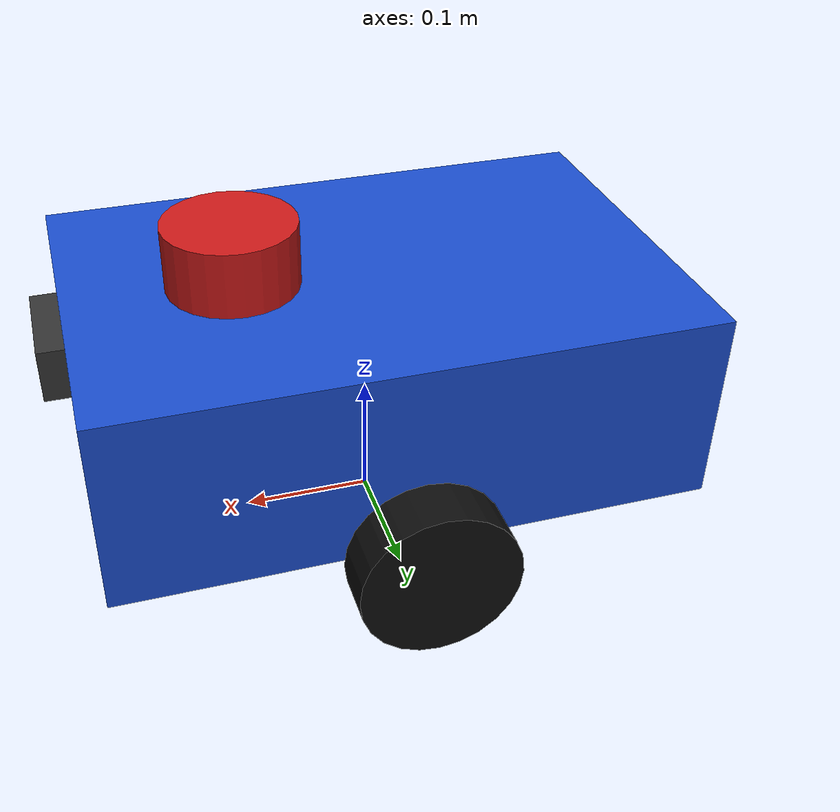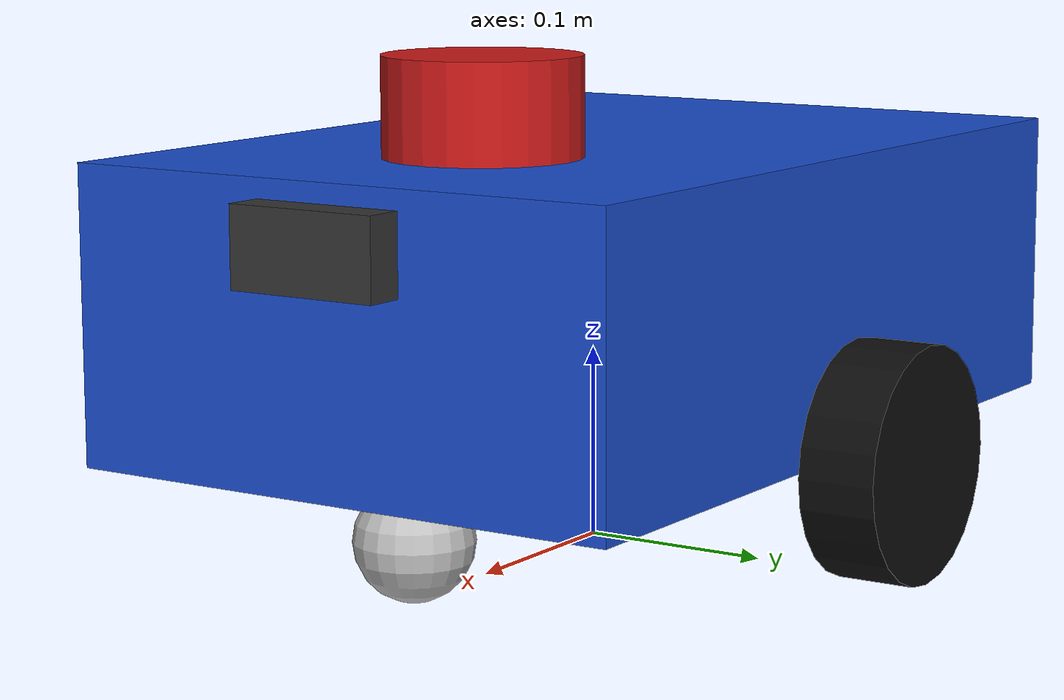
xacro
<?xml version="1.0"?>
<robot xmlns:xacro="http://www.ros.org/wiki/xacro" name="autonomous_robot">

  <xacro:include filename="robot_core.xacro"/>
  <xacro:include filename="lidar.xacro"/>
  <xacro:include filename="camera.xacro"/>
  <xacro:include filename="imu.xacro"/>
  <xacro:include filename="gazebo_plugins.xacro"/>

</robot>

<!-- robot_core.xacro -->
<robot xmlns:xacro="http://www.ros.org/wiki/xacro">

  <!-- Materials -->
  <material name="blue">
    <color rgba="0.1 0.3 0.8 1.0"/>
  </material>
  <material name="dark_grey">
    <color rgba="0.2 0.2 0.2 1.0"/>
  </material>
  <material name="black">
    <color rgba="0.05 0.05 0.05 1.0"/>
  </material>
  <material name="red">
    <color rgba="0.8 0.1 0.1 1.0"/>
  </material>
  <material name="silver">
    <color rgba="0.75 0.75 0.75 1.0"/>
  </material>

  <!-- Base Footprint -->
  <link name="base_footprint"/>

  <joint name="base_footprint_joint" type="fixed">
    <parent link="base_footprint"/>
    <child link="base_link"/>
    <origin xyz="0 0 0.06" rpy="0 0 0"/>
  </joint>

  <!-- Base Link -->
  <link name="base_link">
    <visual>
      <origin xyz="0 0 0.075" rpy="0 0 0"/>
      <geometry>
        <box size="0.45 0.30 0.15"/>
      </geometry>
      <material name="blue"/>
    </visual>
    <collision>
      <origin xyz="0 0 0.075" rpy="0 0 0"/>
      <geometry>
        <box size="0.45 0.30 0.15"/>
      </geometry>
    </collision>
    <inertial>
      <origin xyz="0 0 0.075" rpy="0 0 0"/>
      <mass value="5.0"/>
      <inertia ixx="0.0468" ixy="0.0" ixz="0.0" iyy="0.0937" iyz="0.0" izz="0.1218"/>
    </inertial>
  </link>

  <!-- Left Wheel -->
  <link name="left_wheel_link">
    <visual>
      <geometry>
        <cylinder length="0.04" radius="0.06"/>
      </geometry>
      <material name="black"/>
    </visual>
    <collision>
      <geometry>
        <cylinder length="0.04" radius="0.06"/>
      </geometry>
    </collision>
    <inertial>
      <mass value="0.5"/>
      <inertia ixx="0.000516" ixy="0" ixz="0" iyy="0.000516" iyz="0" izz="0.0009"/>
    </inertial>
  </link>

  <joint name="left_wheel_joint" type="continuous">
    <parent link="base_link"/>
    <child link="left_wheel_link"/>
    <origin xyz="0 0.175 0" rpy="-1.57079 0 0"/>
    <axis xyz="0 0 1"/>
  </joint>

  <!-- Right Wheel -->
  <link name="right_wheel_link">
    <visual>
      <geometry>
        <cylinder length="0.04" radius="0.06"/>
      </geometry>
      <material name="black"/>
    </visual>
    <collision>
      <geometry>
        <cylinder length="0.04" radius="0.06"/>
      </geometry>
    </collision>
    <inertial>
      <mass value="0.5"/>
      <inertia ixx="0.000516" ixy="0" ixz="0" iyy="0.000516" iyz="0" izz="0.0009"/>
    </inertial>
  </link>

  <joint name="right_wheel_joint" type="continuous">
    <parent link="base_link"/>
    <child link="right_wheel_link"/>
    <origin xyz="0 -0.175 0" rpy="-1.57079 0 0"/>
    <axis xyz="0 0 1"/>
  </joint>

  <!-- Front Caster Wheel -->
  <link name="front_caster_link">
    <visual>
      <geometry>
        <sphere radius="0.03"/>
      </geometry>
      <material name="silver"/>
    </visual>
    <collision>
      <geometry>
        <sphere radius="0.03"/>
      </geometry>
    </collision>
    <inertial>
      <mass value="0.2"/>
      <inertia ixx="0.000072" ixy="0" ixz="0" iyy="0.000072" iyz="0" izz="0.000072"/>
    </inertial>
  </link>

  <joint name="front_caster_joint" type="fixed">
    <parent link="base_link"/>
    <child link="front_caster_link"/>
    <origin xyz="0.16 0 -0.03" rpy="0 0 0"/>
  </joint>

  <!-- Rear Caster Wheel -->
  <link name="rear_caster_link">
    <visual>
      <geometry>
        <sphere radius="0.03"/>
      </geometry>
      <material name="silver"/>
    </visual>
    <collision>
      <geometry>
        <sphere radius="0.03"/>
      </geometry>
    </collision>
    <inertial>
      <mass value="0.2"/>
      <inertia ixx="0.000072" ixy="0" ixz="0" iyy="0.000072" iyz="0" izz="0.000072"/>
    </inertial>
  </link>

  <joint name="rear_caster_joint" type="fixed">
    <parent link="base_link"/>
    <child link="rear_caster_link"/>
    <origin xyz="-0.16 0 -0.03" rpy="0 0 0"/>
  </joint>

  <gazebo reference="front_caster_link">
    <mu1>0.001</mu1>
    <mu2>0.001</mu2>
  </gazebo>
  <gazebo reference="rear_caster_link">
    <mu1>0.001</mu1>
    <mu2>0.001</mu2>
  </gazebo>

</robot>

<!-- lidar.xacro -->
<robot xmlns:xacro="http://www.ros.org/wiki/xacro">

  <link name="laser_link">
    <visual>
      <geometry>
        <cylinder length="0.05" radius="0.05"/>
      </geometry>
      <material name="red"/>
    </visual>
    <collision>
      <geometry>
        <cylinder length="0.05" radius="0.05"/>
      </geometry>
    </collision>
    <inertial>
      <mass value="0.15"/>
      <inertia ixx="0.000125" ixy="0" ixz="0" iyy="0.000125" iyz="0" izz="0.0001875"/>
    </inertial>
  </link>

  <joint name="laser_joint" type="fixed">
    <parent link="base_link"/>
    <child link="laser_link"/>
    <origin xyz="0.10 0 0.175" rpy="0 0 0"/>
  </joint>

  <gazebo reference="laser_link">
    <sensor type="gpu_lidar" name="lidar_sensor">
      <pose>0 0 0 0 0 0</pose>
      <always_on>true</always_on>
      <update_rate>20</update_rate>
      <visualize>true</visualize>
      <topic>/scan</topic>
      <gz_frame_id>laser_link</gz_frame_id>
      <lidar>
        <scan>
          <horizontal>
            <samples>720</samples>
            <resolution>1</resolution>
            <min_angle>-3.14159</min_angle>
            <max_angle>3.14159</max_angle>
          </horizontal>
        </scan>
        <range>
          <min>0.12</min>
          <max>12.0</max>
          <resolution>0.01</resolution>
        </range>
        <noise>
          <type>gaussian</type>
          <mean>0.0</mean>
          <stddev>0.01</stddev>
        </noise>
      </lidar>
    </sensor>
  </gazebo>

</robot>

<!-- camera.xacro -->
<robot xmlns:xacro="http://www.ros.org/wiki/xacro">

  <!-- Camera Link (Physical) -->
  <link name="camera_link">
    <visual>
      <origin xyz="0 0 0" rpy="0 0 0"/>
      <geometry>
        <box size="0.05 0.08 0.04"/>
      </geometry>
      <material name="dark_grey"/>
    </visual>
    <collision>
      <origin xyz="0 0 0" rpy="0 0 0"/>
      <geometry>
        <box size="0.05 0.08 0.04"/>
      </geometry>
    </collision>
    <inertial>
      <mass value="0.08"/>
      <inertia ixx="0.00005" ixy="0" ixz="0" iyy="0.00003" iyz="0" izz="0.00005"/>
    </inertial>
  </link>

  <joint name="camera_joint" type="fixed">
    <parent link="base_link"/>
    <child link="camera_link"/>
    <origin xyz="0.22 0 0.12" rpy="0 0 0"/>
  </joint>

  <!-- Camera Optical Link (Standard ROS / OpenCV frame: Z forward, X right, Y down) -->
  <link name="camera_optical_link"/>

  <joint name="camera_optical_joint" type="fixed">
    <parent link="camera_link"/>
    <child link="camera_optical_link"/>
    <origin xyz="0 0 0" rpy="-1.5707963 0 -1.5707963"/>
  </joint>

  <gazebo reference="camera_link">
    <sensor type="camera" name="camera_sensor">
      <pose>0 0 0 0 0 0</pose>
      <always_on>true</always_on>
      <update_rate>30</update_rate>
      <visualize>true</visualize>
      <topic>/camera/image_raw</topic>
      <gz_frame_id>camera_optical_link</gz_frame_id>
      <camera>
        <camera_info_topic>/camera/camera_info</camera_info_topic>
        <horizontal_fov>1.089</horizontal_fov>
        <image>
          <width>640</width>
          <height>480</height>
          <format>R8G8B8</format>
        </image>
        <clip>
          <near>0.08</near>
          <far>25.0</far>
        </clip>
        <noise>
          <type>gaussian</type>
          <mean>0.0</mean>
          <stddev>0.005</stddev>
        </noise>
      </camera>
    </sensor>
  </gazebo>

</robot>

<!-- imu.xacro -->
<robot xmlns:xacro="http://www.ros.org/wiki/xacro">

  <link name="imu_link">
    <visual>
      <geometry>
        <box size="0.02 0.02 0.01"/>
      </geometry>
      <material name="red"/>
    </visual>
    <collision>
      <geometry>
        <box size="0.02 0.02 0.01"/>
      </geometry>
    </collision>
    <inertial>
      <mass value="0.02"/>
      <inertia ixx="0.000001" ixy="0" ixz="0" iyy="0.000001" iyz="0" izz="0.000001"/>
    </inertial>
  </link>

  <joint name="imu_joint" type="fixed">
    <parent link="base_link"/>
    <child link="imu_link"/>
    <origin xyz="0 0 0.08" rpy="0 0 0"/>
  </joint>

  <gazebo reference="imu_link">
    <sensor type="imu" name="imu_sensor">
      <always_on>true</always_on>
      <update_rate>50</update_rate>
      <visualize>false</visualize>
      <topic>/imu/data</topic>
      <gz_frame_id>imu_link</gz_frame_id>
    </sensor>
  </gazebo>

</robot>
